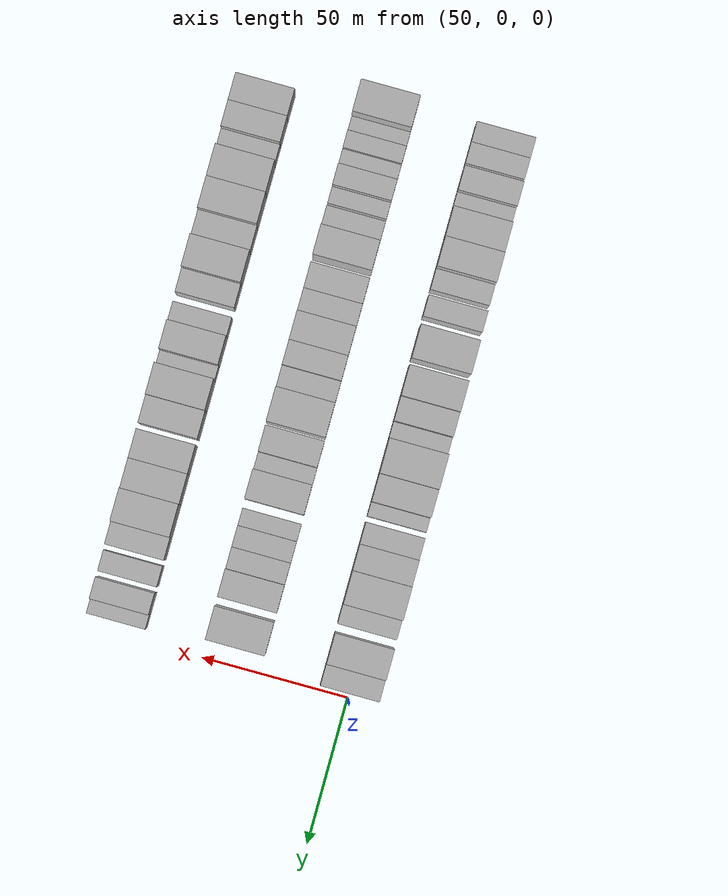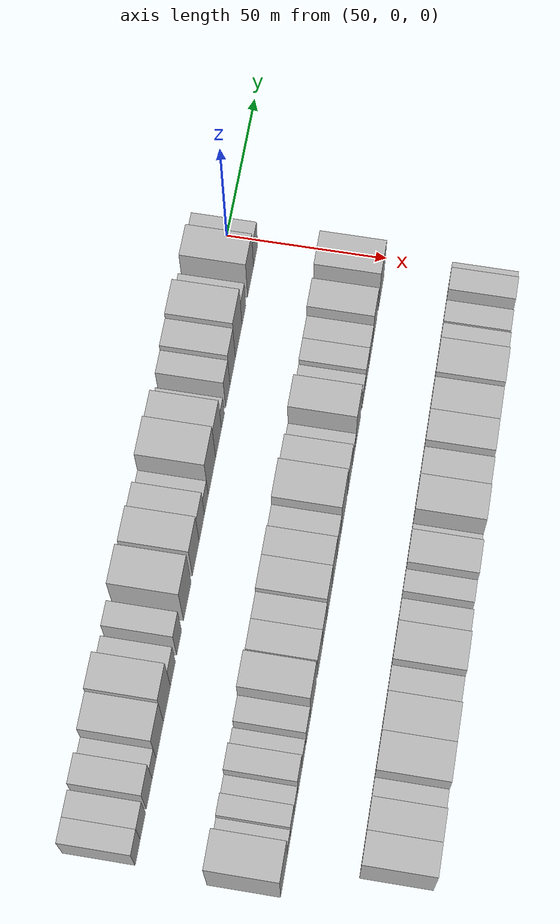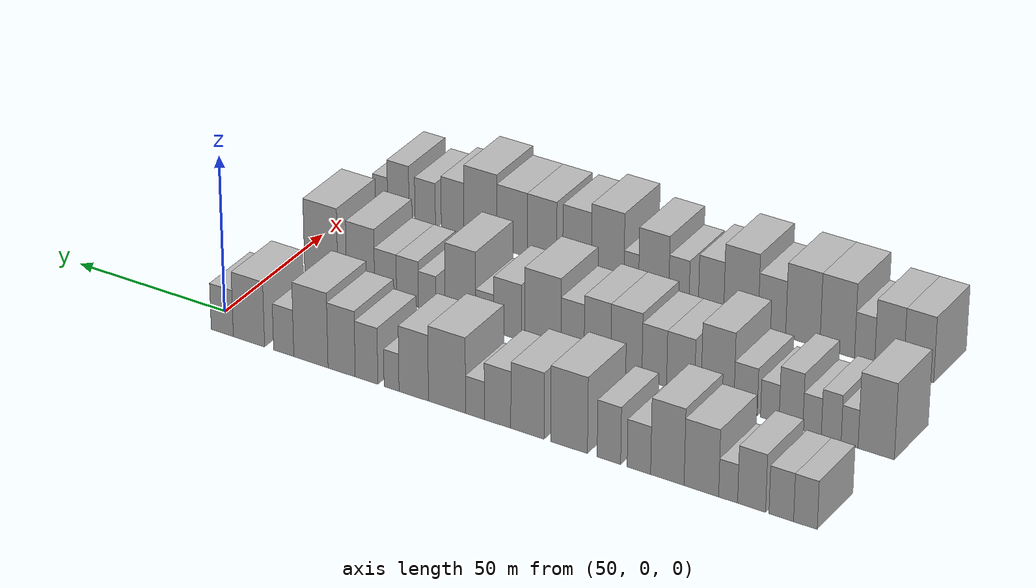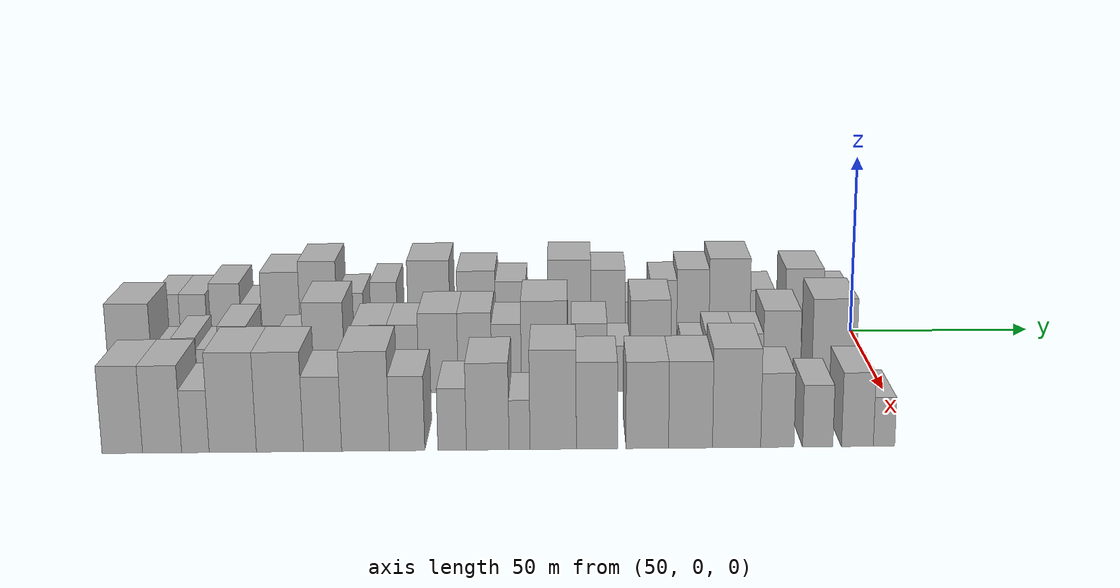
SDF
<sdf version="1.6">
 <world name="default">
  <model name="building_20">
   <static>1</static>
   <pose>50.0000 -189.9568 0 0.000000 0.000000 0.000000</pose>
   <link name="link">
    <pose>0 0 7.50 0 0 0</pose>
    <collision name="collision"><geometry><box><size>20.0000 6.9697 15.0000</size></box></geometry></collision>
    <visual name="visual">
     <cast_shadows>0</cast_shadows>
     <geometry><box><size>20.0000 6.9697 15.0000</size></box></geometry>
     <material>
      <script>
       <uri>model://HANNAS_wall/materials/scripts</uri>
       <uri>model://HANNAS_wall/materials/textures</uri>
       <name>vrc/HANNAS_wall</name>
      </script>
     </material>
    </visual>
   </link>
  </model>
  <model name="building_21">
   <static>1</static>
   <pose>50.0000 -182.8175 0 0.000000 0.000000 0.000000</pose>
   <link name="link">
    <pose>0 0 7.50 0 0 0</pose>
    <collision name="collision"><geometry><box><size>20.0000 7.3088 15.0000</size></box></geometry></collision>
    <visual name="visual">
     <cast_shadows>0</cast_shadows>
     <geometry><box><size>20.0000 7.3088 15.0000</size></box></geometry>
     <material>
      <script>
       <uri>model://HANNAS_wall/materials/scripts</uri>
       <uri>model://HANNAS_wall/materials/textures</uri>
       <name>vrc/HANNAS_wall</name>
      </script>
     </material>
    </visual>
   </link>
  </model>
  <model name="building_22">
   <static>1</static>
   <pose>50.0000 -173.9836 0 0.000000 0.000000 0.000000</pose>
   <link name="link">
    <pose>0 0 9.00 0 0 0</pose>
    <collision name="collision"><geometry><box><size>20.0000 8.3590 18.0000</size></box></geometry></collision>
    <visual name="visual">
     <cast_shadows>0</cast_shadows>
     <geometry><box><size>20.0000 8.3590 18.0000</size></box></geometry>
     <material>
      <script>
       <uri>model://HANNAS_wall/materials/scripts</uri>
       <uri>model://HANNAS_wall/materials/textures</uri>
       <name>vrc/HANNAS_wall</name>
      </script>
     </material>
    </visual>
   </link>
  </model>
  <model name="building_23">
   <static>1</static>
   <pose>50.0000 -166.9671 0 0.000000 0.000000 0.000000</pose>
   <link name="link">
    <pose>0 0 6.00 0 0 0</pose>
    <collision name="collision"><geometry><box><size>20.0000 5.6740 12.0000</size></box></geometry></collision>
    <visual name="visual">
     <cast_shadows>0</cast_shadows>
     <geometry><box><size>20.0000 5.6740 12.0000</size></box></geometry>
     <material>
      <script>
       <uri>model://HANNAS_wall/materials/scripts</uri>
       <uri>model://HANNAS_wall/materials/textures</uri>
       <name>vrc/HANNAS_wall</name>
      </script>
     </material>
    </visual>
   </link>
  </model>
  <model name="building_24">
   <static>1</static>
   <pose>50.0000 -158.9029 0 0.000000 0.000000 0.000000</pose>
   <link name="link">
    <pose>0 0 10.50 0 0 0</pose>
    <collision name="collision"><geometry><box><size>20.0000 10.4545 21.0000</size></box></geometry></collision>
    <visual name="visual">
     <cast_shadows>0</cast_shadows>
     <geometry><box><size>20.0000 10.4545 21.0000</size></box></geometry>
     <material>
      <script>
       <uri>model://HANNAS_wall/materials/scripts</uri>
       <uri>model://HANNAS_wall/materials/textures</uri>
       <name>vrc/HANNAS_wall</name>
      </script>
     </material>
    </visual>
   </link>
  </model>
  <model name="building_25">
   <static>1</static>
   <pose>50.0000 -148.5779 0 0.000000 0.000000 0.000000</pose>
   <link name="link">
    <pose>0 0 12.00 0 0 0</pose>
    <collision name="collision"><geometry><box><size>20.0000 10.1955 24.0000</size></box></geometry></collision>
    <visual name="visual">
     <cast_shadows>0</cast_shadows>
     <geometry><box><size>20.0000 10.1955 24.0000</size></box></geometry>
     <material>
      <script>
       <uri>model://HANNAS_wall/materials/scripts</uri>
       <uri>model://HANNAS_wall/materials/textures</uri>
       <name>vrc/HANNAS_wall</name>
      </script>
     </material>
    </visual>
   </link>
  </model>
  <model name="building_26">
   <static>1</static>
   <pose>50.0000 -139.8926 0 0.000000 0.000000 0.000000</pose>
   <link name="link">
    <pose>0 0 7.50 0 0 0</pose>
    <collision name="collision"><geometry><box><size>20.0000 7.1751 15.0000</size></box></geometry></collision>
    <visual name="visual">
     <cast_shadows>0</cast_shadows>
     <geometry><box><size>20.0000 7.1751 15.0000</size></box></geometry>
     <material>
      <script>
       <uri>model://HANNAS_wall/materials/scripts</uri>
       <uri>model://HANNAS_wall/materials/textures</uri>
       <name>vrc/HANNAS_wall</name>
      </script>
     </material>
    </visual>
   </link>
  </model>
  <model name="building_27">
   <static>1</static>
   <pose>50.0000 -130.6790 0 0.000000 0.000000 0.000000</pose>
   <link name="link">
    <pose>0 0 9.00 0 0 0</pose>
    <collision name="collision"><geometry><box><size>20.0000 7.2520 18.0000</size></box></geometry></collision>
    <visual name="visual">
     <cast_shadows>0</cast_shadows>
     <geometry><box><size>20.0000 7.2520 18.0000</size></box></geometry>
     <material>
      <script>
       <uri>model://HANNAS_wall/materials/scripts</uri>
       <uri>model://HANNAS_wall/materials/textures</uri>
       <name>vrc/HANNAS_wall</name>
      </script>
     </material>
    </visual>
   </link>
  </model>
  <model name="building_28">
   <static>1</static>
   <pose>50.0000 -118.3185 0 0.000000 0.000000 0.000000</pose>
   <link name="link">
    <pose>0 0 12.00 0 0 0</pose>
    <collision name="collision"><geometry><box><size>20.0000 11.4691 24.0000</size></box></geometry></collision>
    <visual name="visual">
     <cast_shadows>0</cast_shadows>
     <geometry><box><size>20.0000 11.4691 24.0000</size></box></geometry>
     <material>
      <script>
       <uri>model://HANNAS_wall/materials/scripts</uri>
       <uri>model://HANNAS_wall/materials/textures</uri>
       <name>vrc/HANNAS_wall</name>
      </script>
     </material>
    </visual>
   </link>
  </model>
  <model name="building_29">
   <static>1</static>
   <pose>50.0000 -105.3368 0 0.000000 0.000000 0.000000</pose>
   <link name="link">
    <pose>0 0 10.50 0 0 0</pose>
    <collision name="collision"><geometry><box><size>20.0000 10.4943 21.0000</size></box></geometry></collision>
    <visual name="visual">
     <cast_shadows>0</cast_shadows>
     <geometry><box><size>20.0000 10.4943 21.0000</size></box></geometry>
     <material>
      <script>
       <uri>model://HANNAS_wall/materials/scripts</uri>
       <uri>model://HANNAS_wall/materials/textures</uri>
       <name>vrc/HANNAS_wall</name>
      </script>
     </material>
    </visual>
   </link>
  </model>
  <model name="building_30">
   <static>1</static>
   <pose>50.0000 -95.8908 0 0.000000 0.000000 0.000000</pose>
   <link name="link">
    <pose>0 0 9.00 0 0 0</pose>
    <collision name="collision"><geometry><box><size>20.0000 8.3976 18.0000</size></box></geometry></collision>
    <visual name="visual">
     <cast_shadows>0</cast_shadows>
     <geometry><box><size>20.0000 8.3976 18.0000</size></box></geometry>
     <material>
      <script>
       <uri>model://HANNAS_wall/materials/scripts</uri>
       <uri>model://HANNAS_wall/materials/textures</uri>
       <name>vrc/HANNAS_wall</name>
      </script>
     </material>
    </visual>
   </link>
  </model>
  <model name="building_31">
   <static>1</static>
   <pose>50.0000 -88.7096 0 0.000000 0.000000 0.000000</pose>
   <link name="link">
    <pose>0 0 6.00 0 0 0</pose>
    <collision name="collision"><geometry><box><size>20.0000 5.9648 12.0000</size></box></geometry></collision>
    <visual name="visual">
     <cast_shadows>0</cast_shadows>
     <geometry><box><size>20.0000 5.9648 12.0000</size></box></geometry>
     <material>
      <script>
       <uri>model://HANNAS_wall/materials/scripts</uri>
       <uri>model://HANNAS_wall/materials/textures</uri>
       <name>vrc/HANNAS_wall</name>
      </script>
     </material>
    </visual>
   </link>
  </model>
  <model name="building_32">
   <static>1</static>
   <pose>50.0000 -79.7945 0 0.000000 0.000000 0.000000</pose>
   <link name="link">
    <pose>0 0 12.00 0 0 0</pose>
    <collision name="collision"><geometry><box><size>20.0000 11.8655 24.0000</size></box></geometry></collision>
    <visual name="visual">
     <cast_shadows>0</cast_shadows>
     <geometry><box><size>20.0000 11.8655 24.0000</size></box></geometry>
     <material>
      <script>
       <uri>model://HANNAS_wall/materials/scripts</uri>
       <uri>model://HANNAS_wall/materials/textures</uri>
       <name>vrc/HANNAS_wall</name>
      </script>
     </material>
    </visual>
   </link>
  </model>
  <model name="building_33">
   <static>1</static>
   <pose>50.0000 -69.1107 0 0.000000 0.000000 0.000000</pose>
   <link name="link">
    <pose>0 0 10.50 0 0 0</pose>
    <collision name="collision"><geometry><box><size>20.0000 9.5022 21.0000</size></box></geometry></collision>
    <visual name="visual">
     <cast_shadows>0</cast_shadows>
     <geometry><box><size>20.0000 9.5022 21.0000</size></box></geometry>
     <material>
      <script>
       <uri>model://HANNAS_wall/materials/scripts</uri>
       <uri>model://HANNAS_wall/materials/textures</uri>
       <name>vrc/HANNAS_wall</name>
      </script>
     </material>
    </visual>
   </link>
  </model>
  <model name="building_34">
   <static>1</static>
   <pose>50.0000 -61.9324 0 0.000000 0.000000 0.000000</pose>
   <link name="link">
    <pose>0 0 6.00 0 0 0</pose>
    <collision name="collision"><geometry><box><size>20.0000 4.8543 12.0000</size></box></geometry></collision>
    <visual name="visual">
     <cast_shadows>0</cast_shadows>
     <geometry><box><size>20.0000 4.8543 12.0000</size></box></geometry>
     <material>
      <script>
       <uri>model://HANNAS_wall/materials/scripts</uri>
       <uri>model://HANNAS_wall/materials/textures</uri>
       <name>vrc/HANNAS_wall</name>
      </script>
     </material>
    </visual>
   </link>
  </model>
  <model name="building_35">
   <static>1</static>
   <pose>50.0000 -53.8134 0 0.000000 0.000000 0.000000</pose>
   <link name="link">
    <pose>0 0 9.00 0 0 0</pose>
    <collision name="collision"><geometry><box><size>20.0000 7.3838 18.0000</size></box></geometry></collision>
    <visual name="visual">
     <cast_shadows>0</cast_shadows>
     <geometry><box><size>20.0000 7.3838 18.0000</size></box></geometry>
     <material>
      <script>
       <uri>model://HANNAS_wall/materials/scripts</uri>
       <uri>model://HANNAS_wall/materials/textures</uri>
       <name>vrc/HANNAS_wall</name>
      </script>
     </material>
    </visual>
   </link>
  </model>
  <model name="building_36">
   <static>1</static>
   <pose>50.0000 -45.6521 0 0.000000 0.000000 0.000000</pose>
   <link name="link">
    <pose>0 0 10.50 0 0 0</pose>
    <collision name="collision"><geometry><box><size>20.0000 8.9389 21.0000</size></box></geometry></collision>
    <visual name="visual">
     <cast_shadows>0</cast_shadows>
     <geometry><box><size>20.0000 8.9389 21.0000</size></box></geometry>
     <material>
      <script>
       <uri>model://HANNAS_wall/materials/scripts</uri>
       <uri>model://HANNAS_wall/materials/textures</uri>
       <name>vrc/HANNAS_wall</name>
      </script>
     </material>
    </visual>
   </link>
  </model>
  <model name="building_37">
   <static>1</static>
   <pose>50.0000 -35.5213 0 0.000000 0.000000 0.000000</pose>
   <link name="link">
    <pose>0 0 12.00 0 0 0</pose>
    <collision name="collision"><geometry><box><size>20.0000 11.3226 24.0000</size></box></geometry></collision>
    <visual name="visual">
     <cast_shadows>0</cast_shadows>
     <geometry><box><size>20.0000 11.3226 24.0000</size></box></geometry>
     <material>
      <script>
       <uri>model://HANNAS_wall/materials/scripts</uri>
       <uri>model://HANNAS_wall/materials/textures</uri>
       <name>vrc/HANNAS_wall</name>
      </script>
     </material>
    </visual>
   </link>
  </model>
  <model name="building_38">
   <static>1</static>
   <pose>50.0000 -26.5018 0 0.000000 0.000000 0.000000</pose>
   <link name="link">
    <pose>0 0 7.50 0 0 0</pose>
    <collision name="collision"><geometry><box><size>20.0000 6.7164 15.0000</size></box></geometry></collision>
    <visual name="visual">
     <cast_shadows>0</cast_shadows>
     <geometry><box><size>20.0000 6.7164 15.0000</size></box></geometry>
     <material>
      <script>
       <uri>model://HANNAS_wall/materials/scripts</uri>
       <uri>model://HANNAS_wall/materials/textures</uri>
       <name>vrc/HANNAS_wall</name>
      </script>
     </material>
    </visual>
   </link>
  </model>
  <model name="building_39">
   <static>1</static>
   <pose>50.0000 -14.8969 0 0.000000 0.000000 0.000000</pose>
   <link name="link">
    <pose>0 0 10.50 0 0 0</pose>
    <collision name="collision"><geometry><box><size>20.0000 10.4936 21.0000</size></box></geometry></collision>
    <visual name="visual">
     <cast_shadows>0</cast_shadows>
     <geometry><box><size>20.0000 10.4936 21.0000</size></box></geometry>
     <material>
      <script>
       <uri>model://HANNAS_wall/materials/scripts</uri>
       <uri>model://HANNAS_wall/materials/textures</uri>
       <name>vrc/HANNAS_wall</name>
      </script>
     </material>
    </visual>
   </link>
  </model>
  <model name="building_40">
   <static>1</static>
   <pose>50.0000 -5.9136 0 0.000000 0.000000 0.000000</pose>
   <link name="link">
    <pose>0 0 7.50 0 0 0</pose>
    <collision name="collision"><geometry><box><size>20.0000 7.4729 15.0000</size></box></geometry></collision>
    <visual name="visual">
     <cast_shadows>0</cast_shadows>
     <geometry><box><size>20.0000 7.4729 15.0000</size></box></geometry>
     <material>
      <script>
       <uri>model://HANNAS_wall/materials/scripts</uri>
       <uri>model://HANNAS_wall/materials/textures</uri>
       <name>vrc/HANNAS_wall</name>
      </script>
     </material>
    </visual>
   </link>
  </model>
  <model name="building_107">
   <static>1</static>
   <pose>90.0000 -189.9891 0 0.000000 0.000000 0.000000</pose>
   <link name="link">
    <pose>0 0 12.00 0 0 0</pose>
    <collision name="collision"><geometry><box><size>20.0000 10.8787 24.0000</size></box></geometry></collision>
    <visual name="visual">
     <cast_shadows>0</cast_shadows>
     <geometry><box><size>20.0000 10.8787 24.0000</size></box></geometry>
     <material>
      <script>
       <uri>model://HANNAS_wall/materials/scripts</uri>
       <uri>model://HANNAS_wall/materials/textures</uri>
       <name>vrc/HANNAS_wall</name>
      </script>
     </material>
    </visual>
   </link>
  </model>
  <model name="building_108">
   <static>1</static>
   <pose>90.0000 -181.9926 0 0.000000 0.000000 0.000000</pose>
   <link name="link">
    <pose>0 0 6.00 0 0 0</pose>
    <collision name="collision"><geometry><box><size>20.0000 5.1143 12.0000</size></box></geometry></collision>
    <visual name="visual">
     <cast_shadows>0</cast_shadows>
     <geometry><box><size>20.0000 5.1143 12.0000</size></box></geometry>
     <material>
      <script>
       <uri>model://HANNAS_wall/materials/scripts</uri>
       <uri>model://HANNAS_wall/materials/textures</uri>
       <name>vrc/HANNAS_wall</name>
      </script>
     </material>
    </visual>
   </link>
  </model>
  <model name="building_109">
   <static>1</static>
   <pose>90.0000 -176.4268 0 0.000000 0.000000 0.000000</pose>
   <link name="link">
    <pose>0 0 7.50 0 0 0</pose>
    <collision name="collision"><geometry><box><size>20.0000 6.0174 15.0000</size></box></geometry></collision>
    <visual name="visual">
     <cast_shadows>0</cast_shadows>
     <geometry><box><size>20.0000 6.0174 15.0000</size></box></geometry>
     <material>
      <script>
       <uri>model://HANNAS_wall/materials/scripts</uri>
       <uri>model://HANNAS_wall/materials/textures</uri>
       <name>vrc/HANNAS_wall</name>
      </script>
     </material>
    </visual>
   </link>
  </model>
  <model name="building_110">
   <static>1</static>
   <pose>90.0000 -170.6094 0 0.000000 0.000000 0.000000</pose>
   <link name="link">
    <pose>0 0 6.00 0 0 0</pose>
    <collision name="collision"><geometry><box><size>20.0000 5.6174 12.0000</size></box></geometry></collision>
    <visual name="visual">
     <cast_shadows>0</cast_shadows>
     <geometry><box><size>20.0000 5.6174 12.0000</size></box></geometry>
     <material>
      <script>
       <uri>model://HANNAS_wall/materials/scripts</uri>
       <uri>model://HANNAS_wall/materials/textures</uri>
       <name>vrc/HANNAS_wall</name>
      </script>
     </material>
    </visual>
   </link>
  </model>
  <model name="building_111">
   <static>1</static>
   <pose>90.0000 -164.1629 0 0.000000 0.000000 0.000000</pose>
   <link name="link">
    <pose>0 0 9.00 0 0 0</pose>
    <collision name="collision"><geometry><box><size>20.0000 7.2754 18.0000</size></box></geometry></collision>
    <visual name="visual">
     <cast_shadows>0</cast_shadows>
     <geometry><box><size>20.0000 7.2754 18.0000</size></box></geometry>
     <material>
      <script>
       <uri>model://HANNAS_wall/materials/scripts</uri>
       <uri>model://HANNAS_wall/materials/textures</uri>
       <name>vrc/HANNAS_wall</name>
      </script>
     </material>
    </visual>
   </link>
  </model>
  <model name="building_112">
   <static>1</static>
   <pose>90.0000 -157.6832 0 0.000000 0.000000 0.000000</pose>
   <link name="link">
    <pose>0 0 6.00 0 0 0</pose>
    <collision name="collision"><geometry><box><size>20.0000 5.6840 12.0000</size></box></geometry></collision>
    <visual name="visual">
     <cast_shadows>0</cast_shadows>
     <geometry><box><size>20.0000 5.6840 12.0000</size></box></geometry>
     <material>
      <script>
       <uri>model://HANNAS_wall/materials/scripts</uri>
       <uri>model://HANNAS_wall/materials/textures</uri>
       <name>vrc/HANNAS_wall</name>
      </script>
     </material>
    </visual>
   </link>
  </model>
  <model name="building_113">
   <static>1</static>
   <pose>90.0000 -150.2178 0 0.000000 0.000000 0.000000</pose>
   <link name="link">
    <pose>0 0 7.50 0 0 0</pose>
    <collision name="collision"><geometry><box><size>20.0000 7.2468 15.0000</size></box></geometry></collision>
    <visual name="visual">
     <cast_shadows>0</cast_shadows>
     <geometry><box><size>20.0000 7.2468 15.0000</size></box></geometry>
     <material>
      <script>
       <uri>model://HANNAS_wall/materials/scripts</uri>
       <uri>model://HANNAS_wall/materials/textures</uri>
       <name>vrc/HANNAS_wall</name>
      </script>
     </material>
    </visual>
   </link>
  </model>
  <model name="building_114">
   <static>1</static>
   <pose>90.0000 -141.4908 0 0.000000 0.000000 0.000000</pose>
   <link name="link">
    <pose>0 0 12.00 0 0 0</pose>
    <collision name="collision"><geometry><box><size>20.0000 10.2072 24.0000</size></box></geometry></collision>
    <visual name="visual">
     <cast_shadows>0</cast_shadows>
     <geometry><box><size>20.0000 10.2072 24.0000</size></box></geometry>
     <material>
      <script>
       <uri>model://HANNAS_wall/materials/scripts</uri>
       <uri>model://HANNAS_wall/materials/textures</uri>
       <name>vrc/HANNAS_wall</name>
      </script>
     </material>
    </visual>
   </link>
  </model>
  <model name="building_115">
   <static>1</static>
   <pose>90.0000 -129.9978 0 0.000000 0.000000 0.000000</pose>
   <link name="link">
    <pose>0 0 9.00 0 0 0</pose>
    <collision name="collision"><geometry><box><size>20.0000 8.7788 18.0000</size></box></geometry></collision>
    <visual name="visual">
     <cast_shadows>0</cast_shadows>
     <geometry><box><size>20.0000 8.7788 18.0000</size></box></geometry>
     <material>
      <script>
       <uri>model://HANNAS_wall/materials/scripts</uri>
       <uri>model://HANNAS_wall/materials/textures</uri>
       <name>vrc/HANNAS_wall</name>
      </script>
     </material>
    </visual>
   </link>
  </model>
  <model name="building_116">
   <static>1</static>
   <pose>90.0000 -121.7153 0 0.000000 0.000000 0.000000</pose>
   <link name="link">
    <pose>0 0 9.00 0 0 0</pose>
    <collision name="collision"><geometry><box><size>20.0000 7.7861 18.0000</size></box></geometry></collision>
    <visual name="visual">
     <cast_shadows>0</cast_shadows>
     <geometry><box><size>20.0000 7.7861 18.0000</size></box></geometry>
     <material>
      <script>
       <uri>model://HANNAS_wall/materials/scripts</uri>
       <uri>model://HANNAS_wall/materials/textures</uri>
       <name>vrc/HANNAS_wall</name>
      </script>
     </material>
    </visual>
   </link>
  </model>
  <model name="building_117">
   <static>1</static>
   <pose>90.0000 -112.8760 0 0.000000 0.000000 0.000000</pose>
   <link name="link">
    <pose>0 0 10.50 0 0 0</pose>
    <collision name="collision"><geometry><box><size>20.0000 9.8925 21.0000</size></box></geometry></collision>
    <visual name="visual">
     <cast_shadows>0</cast_shadows>
     <geometry><box><size>20.0000 9.8925 21.0000</size></box></geometry>
     <material>
      <script>
       <uri>model://HANNAS_wall/materials/scripts</uri>
       <uri>model://HANNAS_wall/materials/textures</uri>
       <name>vrc/HANNAS_wall</name>
      </script>
     </material>
    </visual>
   </link>
  </model>
  <model name="building_118">
   <static>1</static>
   <pose>90.0000 -103.6747 0 0.000000 0.000000 0.000000</pose>
   <link name="link">
    <pose>0 0 10.50 0 0 0</pose>
    <collision name="collision"><geometry><box><size>20.0000 8.5100 21.0000</size></box></geometry></collision>
    <visual name="visual">
     <cast_shadows>0</cast_shadows>
     <geometry><box><size>20.0000 8.5100 21.0000</size></box></geometry>
     <material>
      <script>
       <uri>model://HANNAS_wall/materials/scripts</uri>
       <uri>model://HANNAS_wall/materials/textures</uri>
       <name>vrc/HANNAS_wall</name>
      </script>
     </material>
    </visual>
   </link>
  </model>
  <model name="building_119">
   <static>1</static>
   <pose>90.0000 -95.6875 0 0.000000 0.000000 0.000000</pose>
   <link name="link">
    <pose>0 0 9.00 0 0 0</pose>
    <collision name="collision"><geometry><box><size>20.0000 7.4646 18.0000</size></box></geometry></collision>
    <visual name="visual">
     <cast_shadows>0</cast_shadows>
     <geometry><box><size>20.0000 7.4646 18.0000</size></box></geometry>
     <material>
      <script>
       <uri>model://HANNAS_wall/materials/scripts</uri>
       <uri>model://HANNAS_wall/materials/textures</uri>
       <name>vrc/HANNAS_wall</name>
      </script>
     </material>
    </visual>
   </link>
  </model>
  <model name="building_120">
   <static>1</static>
   <pose>90.0000 -86.0916 0 0.000000 0.000000 0.000000</pose>
   <link name="link">
    <pose>0 0 12.00 0 0 0</pose>
    <collision name="collision"><geometry><box><size>20.0000 11.7271 24.0000</size></box></geometry></collision>
    <visual name="visual">
     <cast_shadows>0</cast_shadows>
     <geometry><box><size>20.0000 11.7271 24.0000</size></box></geometry>
     <material>
      <script>
       <uri>model://HANNAS_wall/materials/scripts</uri>
       <uri>model://HANNAS_wall/materials/textures</uri>
       <name>vrc/HANNAS_wall</name>
      </script>
     </material>
    </visual>
   </link>
  </model>
  <model name="building_121">
   <static>1</static>
   <pose>90.0000 -74.7376 0 0.000000 0.000000 0.000000</pose>
   <link name="link">
    <pose>0 0 9.00 0 0 0</pose>
    <collision name="collision"><geometry><box><size>20.0000 8.9810 18.0000</size></box></geometry></collision>
    <visual name="visual">
     <cast_shadows>0</cast_shadows>
     <geometry><box><size>20.0000 8.9810 18.0000</size></box></geometry>
     <material>
      <script>
       <uri>model://HANNAS_wall/materials/scripts</uri>
       <uri>model://HANNAS_wall/materials/textures</uri>
       <name>vrc/HANNAS_wall</name>
      </script>
     </material>
    </visual>
   </link>
  </model>
  <model name="building_122">
   <static>1</static>
   <pose>90.0000 -67.2730 0 0.000000 0.000000 0.000000</pose>
   <link name="link">
    <pose>0 0 6.00 0 0 0</pose>
    <collision name="collision"><geometry><box><size>20.0000 5.9482 12.0000</size></box></geometry></collision>
    <visual name="visual">
     <cast_shadows>0</cast_shadows>
     <geometry><box><size>20.0000 5.9482 12.0000</size></box></geometry>
     <material>
      <script>
       <uri>model://HANNAS_wall/materials/scripts</uri>
       <uri>model://HANNAS_wall/materials/textures</uri>
       <name>vrc/HANNAS_wall</name>
      </script>
     </material>
    </visual>
   </link>
  </model>
  <model name="building_123">
   <static>1</static>
   <pose>90.0000 -59.2426 0 0.000000 0.000000 0.000000</pose>
   <link name="link">
    <pose>0 0 12.00 0 0 0</pose>
    <collision name="collision"><geometry><box><size>20.0000 10.1126 24.0000</size></box></geometry></collision>
    <visual name="visual">
     <cast_shadows>0</cast_shadows>
     <geometry><box><size>20.0000 10.1126 24.0000</size></box></geometry>
     <material>
      <script>
       <uri>model://HANNAS_wall/materials/scripts</uri>
       <uri>model://HANNAS_wall/materials/textures</uri>
       <name>vrc/HANNAS_wall</name>
      </script>
     </material>
    </visual>
   </link>
  </model>
  <model name="building_124">
   <static>1</static>
   <pose>90.0000 -48.2401 0 0.000000 0.000000 0.000000</pose>
   <link name="link">
    <pose>0 0 6.00 0 0 0</pose>
    <collision name="collision"><geometry><box><size>20.0000 5.8925 12.0000</size></box></geometry></collision>
    <visual name="visual">
     <cast_shadows>0</cast_shadows>
     <geometry><box><size>20.0000 5.8925 12.0000</size></box></geometry>
     <material>
      <script>
       <uri>model://HANNAS_wall/materials/scripts</uri>
       <uri>model://HANNAS_wall/materials/textures</uri>
       <name>vrc/HANNAS_wall</name>
      </script>
     </material>
    </visual>
   </link>
  </model>
  <model name="building_125">
   <static>1</static>
   <pose>90.0000 -41.6613 0 0.000000 0.000000 0.000000</pose>
   <link name="link">
    <pose>0 0 7.50 0 0 0</pose>
    <collision name="collision"><geometry><box><size>20.0000 7.2651 15.0000</size></box></geometry></collision>
    <visual name="visual">
     <cast_shadows>0</cast_shadows>
     <geometry><box><size>20.0000 7.2651 15.0000</size></box></geometry>
     <material>
      <script>
       <uri>model://HANNAS_wall/materials/scripts</uri>
       <uri>model://HANNAS_wall/materials/textures</uri>
       <name>vrc/HANNAS_wall</name>
      </script>
     </material>
    </visual>
   </link>
  </model>
  <model name="building_126">
   <static>1</static>
   <pose>90.0000 -34.3579 0 0.000000 0.000000 0.000000</pose>
   <link name="link">
    <pose>0 0 7.50 0 0 0</pose>
    <collision name="collision"><geometry><box><size>20.0000 7.3419 15.0000</size></box></geometry></collision>
    <visual name="visual">
     <cast_shadows>0</cast_shadows>
     <geometry><box><size>20.0000 7.3419 15.0000</size></box></geometry>
     <material>
      <script>
       <uri>model://HANNAS_wall/materials/scripts</uri>
       <uri>model://HANNAS_wall/materials/textures</uri>
       <name>vrc/HANNAS_wall</name>
      </script>
     </material>
    </visual>
   </link>
  </model>
  <model name="building_127">
   <static>1</static>
   <pose>90.0000 -25.9698 0 0.000000 0.000000 0.000000</pose>
   <link name="link">
    <pose>0 0 10.50 0 0 0</pose>
    <collision name="collision"><geometry><box><size>20.0000 9.4343 21.0000</size></box></geometry></collision>
    <visual name="visual">
     <cast_shadows>0</cast_shadows>
     <geometry><box><size>20.0000 9.4343 21.0000</size></box></geometry>
     <material>
      <script>
       <uri>model://HANNAS_wall/materials/scripts</uri>
       <uri>model://HANNAS_wall/materials/textures</uri>
       <name>vrc/HANNAS_wall</name>
      </script>
     </material>
    </visual>
   </link>
  </model>
  <model name="building_128">
   <static>1</static>
   <pose>90.0000 -12.5943 0 0.000000 0.000000 0.000000</pose>
   <link name="link">
    <pose>0 0 12.00 0 0 0</pose>
    <collision name="collision"><geometry><box><size>20.0000 11.3168 24.0000</size></box></geometry></collision>
    <visual name="visual">
     <cast_shadows>0</cast_shadows>
     <geometry><box><size>20.0000 11.3168 24.0000</size></box></geometry>
     <material>
      <script>
       <uri>model://HANNAS_wall/materials/scripts</uri>
       <uri>model://HANNAS_wall/materials/textures</uri>
       <name>vrc/HANNAS_wall</name>
      </script>
     </material>
    </visual>
   </link>
  </model>
  <model name="building_191">
   <static>1</static>
   <pose>130.0000 -182.3755 0 0.000000 0.000000 0.000000</pose>
   <link name="link">
    <pose>0 0 10.50 0 0 0</pose>
    <collision name="collision"><geometry><box><size>20.0000 9.2311 21.0000</size></box></geometry></collision>
    <visual name="visual">
     <cast_shadows>0</cast_shadows>
     <geometry><box><size>20.0000 9.2311 21.0000</size></box></geometry>
     <material>
      <script>
       <uri>model://HANNAS_wall/materials/scripts</uri>
       <uri>model://HANNAS_wall/materials/textures</uri>
       <name>vrc/HANNAS_wall</name>
      </script>
     </material>
    </visual>
   </link>
  </model>
  <model name="building_192">
   <static>1</static>
   <pose>130.0000 -173.3020 0 0.000000 0.000000 0.000000</pose>
   <link name="link">
    <pose>0 0 10.50 0 0 0</pose>
    <collision name="collision"><geometry><box><size>20.0000 8.9160 21.0000</size></box></geometry></collision>
    <visual name="visual">
     <cast_shadows>0</cast_shadows>
     <geometry><box><size>20.0000 8.9160 21.0000</size></box></geometry>
     <material>
      <script>
       <uri>model://HANNAS_wall/materials/scripts</uri>
       <uri>model://HANNAS_wall/materials/textures</uri>
       <name>vrc/HANNAS_wall</name>
      </script>
     </material>
    </visual>
   </link>
  </model>
  <model name="building_193">
   <static>1</static>
   <pose>130.0000 -165.7076 0 0.000000 0.000000 0.000000</pose>
   <link name="link">
    <pose>0 0 7.50 0 0 0</pose>
    <collision name="collision"><geometry><box><size>20.0000 6.2729 15.0000</size></box></geometry></collision>
    <visual name="visual">
     <cast_shadows>0</cast_shadows>
     <geometry><box><size>20.0000 6.2729 15.0000</size></box></geometry>
     <material>
      <script>
       <uri>model://HANNAS_wall/materials/scripts</uri>
       <uri>model://HANNAS_wall/materials/textures</uri>
       <name>vrc/HANNAS_wall</name>
      </script>
     </material>
    </visual>
   </link>
  </model>
  <model name="building_194">
   <static>1</static>
   <pose>130.0000 -157.1683 0 0.000000 0.000000 0.000000</pose>
   <link name="link">
    <pose>0 0 12.00 0 0 0</pose>
    <collision name="collision"><geometry><box><size>20.0000 10.8056 24.0000</size></box></geometry></collision>
    <visual name="visual">
     <cast_shadows>0</cast_shadows>
     <geometry><box><size>20.0000 10.8056 24.0000</size></box></geometry>
     <material>
      <script>
       <uri>model://HANNAS_wall/materials/scripts</uri>
       <uri>model://HANNAS_wall/materials/textures</uri>
       <name>vrc/HANNAS_wall</name>
      </script>
     </material>
    </visual>
   </link>
  </model>
  <model name="building_195">
   <static>1</static>
   <pose>130.0000 -146.3792 0 0.000000 0.000000 0.000000</pose>
   <link name="link">
    <pose>0 0 12.00 0 0 0</pose>
    <collision name="collision"><geometry><box><size>20.0000 10.7727 24.0000</size></box></geometry></collision>
    <visual name="visual">
     <cast_shadows>0</cast_shadows>
     <geometry><box><size>20.0000 10.7727 24.0000</size></box></geometry>
     <material>
      <script>
       <uri>model://HANNAS_wall/materials/scripts</uri>
       <uri>model://HANNAS_wall/materials/textures</uri>
       <name>vrc/HANNAS_wall</name>
      </script>
     </material>
    </visual>
   </link>
  </model>
  <model name="building_196">
   <static>1</static>
   <pose>130.0000 -136.6217 0 0.000000 0.000000 0.000000</pose>
   <link name="link">
    <pose>0 0 9.00 0 0 0</pose>
    <collision name="collision"><geometry><box><size>20.0000 8.7422 18.0000</size></box></geometry></collision>
    <visual name="visual">
     <cast_shadows>0</cast_shadows>
     <geometry><box><size>20.0000 8.7422 18.0000</size></box></geometry>
     <material>
      <script>
       <uri>model://HANNAS_wall/materials/scripts</uri>
       <uri>model://HANNAS_wall/materials/textures</uri>
       <name>vrc/HANNAS_wall</name>
      </script>
     </material>
    </visual>
   </link>
  </model>
  <model name="building_197">
   <static>1</static>
   <pose>130.0000 -126.7573 0 0.000000 0.000000 0.000000</pose>
   <link name="link">
    <pose>0 0 12.00 0 0 0</pose>
    <collision name="collision"><geometry><box><size>20.0000 10.9866 24.0000</size></box></geometry></collision>
    <visual name="visual">
     <cast_shadows>0</cast_shadows>
     <geometry><box><size>20.0000 10.9866 24.0000</size></box></geometry>
     <material>
      <script>
       <uri>model://HANNAS_wall/materials/scripts</uri>
       <uri>model://HANNAS_wall/materials/textures</uri>
       <name>vrc/HANNAS_wall</name>
      </script>
     </material>
    </visual>
   </link>
  </model>
  <model name="building_198">
   <static>1</static>
   <pose>130.0000 -117.2024 0 0.000000 0.000000 0.000000</pose>
   <link name="link">
    <pose>0 0 9.00 0 0 0</pose>
    <collision name="collision"><geometry><box><size>20.0000 8.1233 18.0000</size></box></geometry></collision>
    <visual name="visual">
     <cast_shadows>0</cast_shadows>
     <geometry><box><size>20.0000 8.1233 18.0000</size></box></geometry>
     <material>
      <script>
       <uri>model://HANNAS_wall/materials/scripts</uri>
       <uri>model://HANNAS_wall/materials/textures</uri>
       <name>vrc/HANNAS_wall</name>
      </script>
     </material>
    </visual>
   </link>
  </model>
  <model name="building_199">
   <static>1</static>
   <pose>130.0000 -106.8595 0 0.000000 0.000000 0.000000</pose>
   <link name="link">
    <pose>0 0 7.50 0 0 0</pose>
    <collision name="collision"><geometry><box><size>20.0000 6.5623 15.0000</size></box></geometry></collision>
    <visual name="visual">
     <cast_shadows>0</cast_shadows>
     <geometry><box><size>20.0000 6.5623 15.0000</size></box></geometry>
     <material>
      <script>
       <uri>model://HANNAS_wall/materials/scripts</uri>
       <uri>model://HANNAS_wall/materials/textures</uri>
       <name>vrc/HANNAS_wall</name>
      </script>
     </material>
    </visual>
   </link>
  </model>
  <model name="building_200">
   <static>1</static>
   <pose>130.0000 -98.6661 0 0.000000 0.000000 0.000000</pose>
   <link name="link">
    <pose>0 0 10.50 0 0 0</pose>
    <collision name="collision"><geometry><box><size>20.0000 9.8246 21.0000</size></box></geometry></collision>
    <visual name="visual">
     <cast_shadows>0</cast_shadows>
     <geometry><box><size>20.0000 9.8246 21.0000</size></box></geometry>
     <material>
      <script>
       <uri>model://HANNAS_wall/materials/scripts</uri>
       <uri>model://HANNAS_wall/materials/textures</uri>
       <name>vrc/HANNAS_wall</name>
      </script>
     </material>
    </visual>
   </link>
  </model>
  <model name="building_201">
   <static>1</static>
   <pose>130.0000 -91.3421 0 0.000000 0.000000 0.000000</pose>
   <link name="link">
    <pose>0 0 6.00 0 0 0</pose>
    <collision name="collision"><geometry><box><size>20.0000 4.8234 12.0000</size></box></geometry></collision>
    <visual name="visual">
     <cast_shadows>0</cast_shadows>
     <geometry><box><size>20.0000 4.8234 12.0000</size></box></geometry>
     <material>
      <script>
       <uri>model://HANNAS_wall/materials/scripts</uri>
       <uri>model://HANNAS_wall/materials/textures</uri>
       <name>vrc/HANNAS_wall</name>
      </script>
     </material>
    </visual>
   </link>
  </model>
  <model name="building_202">
   <static>1</static>
   <pose>130.0000 -83.5848 0 0.000000 0.000000 0.000000</pose>
   <link name="link">
    <pose>0 0 12.00 0 0 0</pose>
    <collision name="collision"><geometry><box><size>20.0000 10.6913 24.0000</size></box></geometry></collision>
    <visual name="visual">
     <cast_shadows>0</cast_shadows>
     <geometry><box><size>20.0000 10.6913 24.0000</size></box></geometry>
     <material>
      <script>
       <uri>model://HANNAS_wall/materials/scripts</uri>
       <uri>model://HANNAS_wall/materials/textures</uri>
       <name>vrc/HANNAS_wall</name>
      </script>
     </material>
    </visual>
   </link>
  </model>
  <model name="building_203">
   <static>1</static>
   <pose>130.0000 -73.4925 0 0.000000 0.000000 0.000000</pose>
   <link name="link">
    <pose>0 0 10.50 0 0 0</pose>
    <collision name="collision"><geometry><box><size>20.0000 9.4932 21.0000</size></box></geometry></collision>
    <visual name="visual">
     <cast_shadows>0</cast_shadows>
     <geometry><box><size>20.0000 9.4932 21.0000</size></box></geometry>
     <material>
      <script>
       <uri>model://HANNAS_wall/materials/scripts</uri>
       <uri>model://HANNAS_wall/materials/textures</uri>
       <name>vrc/HANNAS_wall</name>
      </script>
     </material>
    </visual>
   </link>
  </model>
  <model name="building_204">
   <static>1</static>
   <pose>130.0000 -61.8335 0 0.000000 0.000000 0.000000</pose>
   <link name="link">
    <pose>0 0 10.50 0 0 0</pose>
    <collision name="collision"><geometry><box><size>20.0000 9.8249 21.0000</size></box></geometry></collision>
    <visual name="visual">
     <cast_shadows>0</cast_shadows>
     <geometry><box><size>20.0000 9.8249 21.0000</size></box></geometry>
     <material>
      <script>
       <uri>model://HANNAS_wall/materials/scripts</uri>
       <uri>model://HANNAS_wall/materials/textures</uri>
       <name>vrc/HANNAS_wall</name>
      </script>
     </material>
    </visual>
   </link>
  </model>
  <model name="building_205">
   <static>1</static>
   <pose>130.0000 -51.8373 0 0.000000 0.000000 0.000000</pose>
   <link name="link">
    <pose>0 0 10.50 0 0 0</pose>
    <collision name="collision"><geometry><box><size>20.0000 10.1675 21.0000</size></box></geometry></collision>
    <visual name="visual">
     <cast_shadows>0</cast_shadows>
     <geometry><box><size>20.0000 10.1675 21.0000</size></box></geometry>
     <material>
      <script>
       <uri>model://HANNAS_wall/materials/scripts</uri>
       <uri>model://HANNAS_wall/materials/textures</uri>
       <name>vrc/HANNAS_wall</name>
      </script>
     </material>
    </visual>
   </link>
  </model>
  <model name="building_206">
   <static>1</static>
   <pose>130.0000 -41.1692 0 0.000000 0.000000 0.000000</pose>
   <link name="link">
    <pose>0 0 12.00 0 0 0</pose>
    <collision name="collision"><geometry><box><size>20.0000 11.1687 24.0000</size></box></geometry></collision>
    <visual name="visual">
     <cast_shadows>0</cast_shadows>
     <geometry><box><size>20.0000 11.1687 24.0000</size></box></geometry>
     <material>
      <script>
       <uri>model://HANNAS_wall/materials/scripts</uri>
       <uri>model://HANNAS_wall/materials/textures</uri>
       <name>vrc/HANNAS_wall</name>
      </script>
     </material>
    </visual>
   </link>
  </model>
  <model name="building_207">
   <static>1</static>
   <pose>130.0000 -31.7210 0 0.000000 0.000000 0.000000</pose>
   <link name="link">
    <pose>0 0 9.00 0 0 0</pose>
    <collision name="collision"><geometry><box><size>20.0000 7.7276 18.0000</size></box></geometry></collision>
    <visual name="visual">
     <cast_shadows>0</cast_shadows>
     <geometry><box><size>20.0000 7.7276 18.0000</size></box></geometry>
     <material>
      <script>
       <uri>model://HANNAS_wall/materials/scripts</uri>
       <uri>model://HANNAS_wall/materials/textures</uri>
       <name>vrc/HANNAS_wall</name>
      </script>
     </material>
    </visual>
   </link>
  </model>
  <model name="building_208">
   <static>1</static>
   <pose>130.0000 -22.3314 0 0.000000 0.000000 0.000000</pose>
   <link name="link">
    <pose>0 0 7.50 0 0 0</pose>
    <collision name="collision"><geometry><box><size>20.0000 7.0517 15.0000</size></box></geometry></collision>
    <visual name="visual">
     <cast_shadows>0</cast_shadows>
     <geometry><box><size>20.0000 7.0517 15.0000</size></box></geometry>
     <material>
      <script>
       <uri>model://HANNAS_wall/materials/scripts</uri>
       <uri>model://HANNAS_wall/materials/textures</uri>
       <name>vrc/HANNAS_wall</name>
      </script>
     </material>
    </visual>
   </link>
  </model>
  <model name="building_209">
   <static>1</static>
   <pose>130.0000 -13.1034 0 0.000000 0.000000 0.000000</pose>
   <link name="link">
    <pose>0 0 9.00 0 0 0</pose>
    <collision name="collision"><geometry><box><size>20.0000 7.4043 18.0000</size></box></geometry></collision>
    <visual name="visual">
     <cast_shadows>0</cast_shadows>
     <geometry><box><size>20.0000 7.4043 18.0000</size></box></geometry>
     <material>
      <script>
       <uri>model://HANNAS_wall/materials/scripts</uri>
       <uri>model://HANNAS_wall/materials/textures</uri>
       <name>vrc/HANNAS_wall</name>
      </script>
     </material>
    </visual>
   </link>
  </model>
  <model name="building_210">
   <static>1</static>
   <pose>130.0000 -6.9065 0 0.000000 0.000000 0.000000</pose>
   <link name="link">
    <pose>0 0 6.00 0 0 0</pose>
    <collision name="collision"><geometry><box><size>20.0000 4.9894 12.0000</size></box></geometry></collision>
    <visual name="visual">
     <cast_shadows>0</cast_shadows>
     <geometry><box><size>20.0000 4.9894 12.0000</size></box></geometry>
     <material>
      <script>
       <uri>model://HANNAS_wall/materials/scripts</uri>
       <uri>model://HANNAS_wall/materials/textures</uri>
       <name>vrc/HANNAS_wall</name>
      </script>
     </material>
    </visual>
   </link>
  </model>
 </world>
</sdf>
